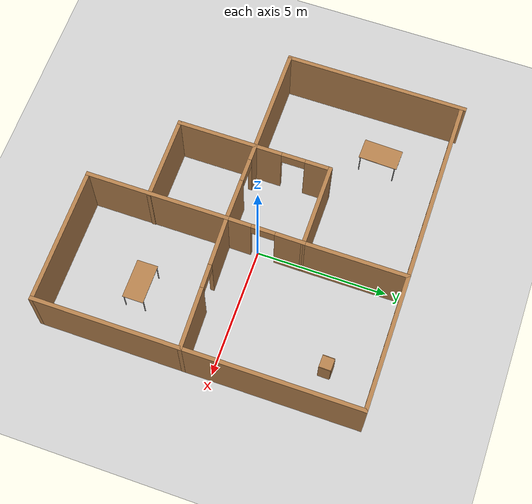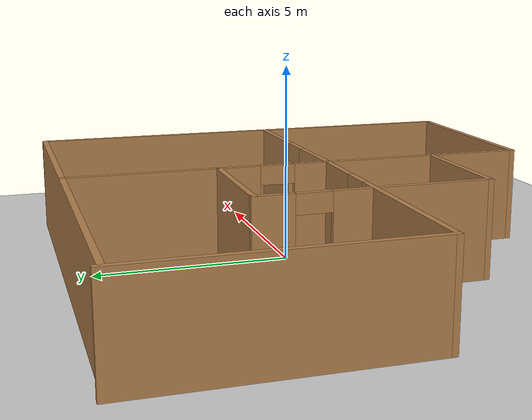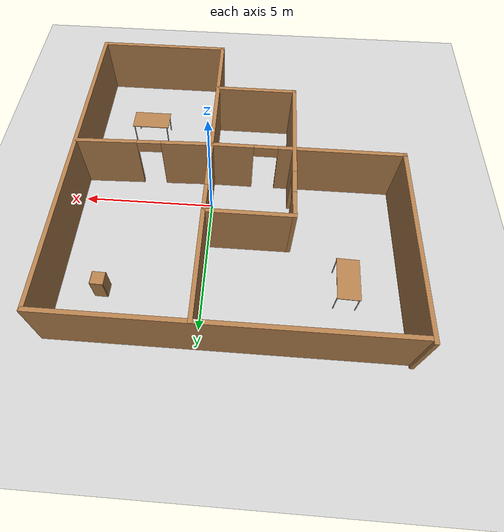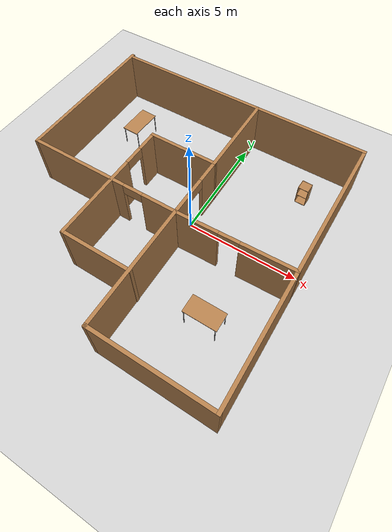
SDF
<sdf version="1.7">
 <world name="default">
  <light name="sun" type="directional">
   <pose>0 0 10 0 -0 0</pose>
   <diffuse>0.8 0.8 0.8 1</diffuse>
   <specular>0.2 0.2 0.2 1</specular>
   <attenuation>
    <range>1000</range>
    <constant>0.9</constant>
    <linear>0.01</linear>
    <quadratic>0.001</quadratic>
   </attenuation>
   <direction>-0.5 0.1 -0.9</direction>
   <spot><inner_angle>0</inner_angle><outer_angle>0</outer_angle><falloff>0</falloff></spot>
  </light>
  <model name="ground_plane">
   <static>1</static>
   <link name="link">
    <collision name="collision">
     <geometry><plane><normal>0 0 1</normal><size>100 100</size></plane></geometry>
     <surface>
      <contact><collide_bitmask>65535</collide_bitmask></contact>
      <friction><ode><mu>100</mu><mu2>50</mu2></ode></friction>
     </surface>
    </collision>
    <visual name="visual">
     <cast_shadows>0</cast_shadows>
     <geometry><plane><normal>0 0 1</normal><size>100 100</size></plane></geometry>
     <material>
      <script><uri>file://media/materials/scripts/gazebo.material</uri><name>Gazebo/Grey</name></script>
     </material>
    </visual>
   </link>
  </model>
  <gravity>0 0 -9.8</gravity>
  <magnetic_field>6e-06 2.3e-05 -4.2e-05</magnetic_field>
  <atmosphere type="adiabatic"/>
  <physics type="ode">
   <max_step_size>0.001</max_step_size>
   <real_time_factor>1</real_time_factor>
   <real_time_update_rate>1000</real_time_update_rate>
  </physics>
  <scene><ambient>0.4 0.4 0.4 1</ambient><background>0.7 0.7 0.7 1</background><shadows>1</shadows></scene>
  <spherical_coordinates>
   <surface_model>EARTH_WGS84</surface_model>
   <latitude_deg>0</latitude_deg>
   <longitude_deg>0</longitude_deg>
   <elevation>0</elevation>
   <heading_deg>0</heading_deg>
  </spherical_coordinates>
  <model name="aki_world5">
   <pose>-0.943228 -0.405773 0 0 -0 0</pose>
   <link name="Wall_10">
    <collision name="Wall_10_Collision">
     <geometry><box><size>7 0.15 2.5</size></box></geometry>
     <pose>0 0 1.25 0 -0 0</pose>
    </collision>
    <visual name="Wall_10_Visual">
     <pose>0 0 1.25 0 -0 0</pose>
     <geometry><box><size>7 0.15 2.5</size></box></geometry>
     <material>
      <script><uri>file://media/materials/scripts/gazebo.material</uri><name>Gazebo/Wood</name></script>
      <ambient>1 1 1 1</ambient>
     </material>
     <meta><layer>0</layer></meta>
    </visual>
    <pose>-6.10265 2.675 0 0 -0 1.5708</pose>
   </link>
   <link name="Wall_12">
    <pose>3.54889 -0.673424 0 0 -0 -3.11159</pose>
    <visual name="Wall_12_Visual_0">
     <pose>-1.43181 0 1.25 0 -0 0</pose>
     <geometry><box><size>2.39177 0.15 2.5</size></box></geometry>
     <material>
      <script><uri>file://media/materials/scripts/gazebo.material</uri><name>Gazebo/Wood</name></script>
      <ambient>1 1 1 1</ambient>
     </material>
     <meta><layer>0</layer></meta>
    </visual>
    <collision name="Wall_12_Collision_0">
     <geometry><box><size>2.39177 0.15 2.5</size></box></geometry>
     <pose>-1.43181 0 1.25 0 -0 0</pose>
    </collision>
    <visual name="Wall_12_Visual_1">
     <pose>1.64589 0 1.25 0 -0 0</pose>
     <geometry><box><size>1.96362 0.15 2.5</size></box></geometry>
     <material>
      <script><uri>file://media/materials/scripts/gazebo.material</uri><name>Gazebo/Wood</name></script>
      <ambient>1 1 1 1</ambient>
     </material>
     <meta><layer>0</layer></meta>
    </visual>
    <collision name="Wall_12_Collision_1">
     <geometry><box><size>1.96362 0.15 2.5</size></box></geometry>
     <pose>1.64589 0 1.25 0 -0 0</pose>
    </collision>
    <visual name="Wall_12_Visual_2">
     <pose>0.214077 0 2.25 0 -0 0</pose>
     <geometry><box><size>0.9 0.15 0.5</size></box></geometry>
     <material>
      <script><uri>file://media/materials/scripts/gazebo.material</uri><name>Gazebo/Wood</name></script>
      <ambient>1 1 1 1</ambient>
     </material>
     <meta><layer>0</layer></meta>
    </visual>
    <collision name="Wall_12_Collision_2">
     <geometry><box><size>0.9 0.15 0.5</size></box></geometry>
     <pose>0.214077 0 2.25 0 -0 0</pose>
    </collision>
   </link>
   <link name="Wall_14">
    <collision name="Wall_14_Collision">
     <geometry><box><size>3.25 0.15 2.5</size></box></geometry>
     <pose>0 0 1.25 0 -0 0</pose>
    </collision>
    <visual name="Wall_14_Visual">
     <pose>0 0 1.25 0 -0 0</pose>
     <geometry><box><size>3.25 0.15 2.5</size></box></geometry>
     <material>
      <script><uri>file://media/materials/scripts/gazebo.material</uri><name>Gazebo/Wood</name></script>
      <ambient>1 1 1 1</ambient>
     </material>
     <meta><layer>0</layer></meta>
    </visual>
    <pose>-0.530201 -3.70907 0 0 -0 3.14159</pose>
   </link>
   <link name="Wall_15">
    <pose>-2.0802 -0.784072 0 0 -0 1.5708</pose>
    <visual name="Wall_15_Visual_0">
     <pose>-0.966383 0 1.25 0 -0 0</pose>
     <geometry><box><size>4.06723 0.15 2.5</size></box></geometry>
     <material>
      <script><uri>file://media/materials/scripts/gazebo.material</uri><name>Gazebo/Wood</name></script>
      <ambient>1 1 1 1</ambient>
     </material>
     <meta><layer>0</layer></meta>
    </visual>
    <collision name="Wall_15_Collision_0">
     <geometry><box><size>4.06723 0.15 2.5</size></box></geometry>
     <pose>-0.966383 0 1.25 0 -0 0</pose>
    </collision>
    <visual name="Wall_15_Visual_1">
     <pose>2.48362 0 1.25 0 -0 0</pose>
     <geometry><box><size>1.03277 0.15 2.5</size></box></geometry>
     <material>
      <script><uri>file://media/materials/scripts/gazebo.material</uri><name>Gazebo/Wood</name></script>
      <ambient>1 1 1 1</ambient>
     </material>
     <meta><layer>0</layer></meta>
    </visual>
    <collision name="Wall_15_Collision_1">
     <geometry><box><size>1.03277 0.15 2.5</size></box></geometry>
     <pose>2.48362 0 1.25 0 -0 0</pose>
    </collision>
    <visual name="Wall_15_Visual_2">
     <pose>1.51723 0 2.25 0 -0 0</pose>
     <geometry><box><size>0.9 0.15 0.5</size></box></geometry>
     <material>
      <script><uri>file://media/materials/scripts/gazebo.material</uri><name>Gazebo/Wood</name></script>
      <ambient>1 1 1 1</ambient>
     </material>
     <meta><layer>0</layer></meta>
    </visual>
    <collision name="Wall_15_Collision_2">
     <geometry><box><size>0.9 0.15 0.5</size></box></geometry>
     <pose>1.51723 0 2.25 0 -0 0</pose>
    </collision>
   </link>
   <link name="Wall_16">
    <collision name="Wall_16_Collision">
     <geometry><box><size>3.25 0.15 2.5</size></box></geometry>
     <pose>0 0 1.25 0 -0 0</pose>
    </collision>
    <visual name="Wall_16_Visual">
     <pose>0 0 1.25 0 -0 0</pose>
     <geometry><box><size>3.25 0.15 2.5</size></box></geometry>
     <material>
      <script><uri>file://media/materials/scripts/gazebo.material</uri><name>Gazebo/Wood</name></script>
      <ambient>1 1 1 1</ambient>
     </material>
     <meta><layer>0</layer></meta>
    </visual>
    <pose>-0.530201 2.14093 0 0 -0 0</pose>
   </link>
   <link name="Wall_17">
    <pose>1.00857 0.695464 0 0 -0 -1.57856</pose>
    <visual name="Wall_17_Visual_0">
     <pose>-0.951153 0 1.25 0 -0 0</pose>
     <geometry><box><size>1.13871 0.15 2.5</size></box></geometry>
     <material>
      <script><uri>file://media/materials/scripts/gazebo.material</uri><name>Gazebo/Wood</name></script>
      <ambient>1 1 1 1</ambient>
     </material>
     <meta><layer>0</layer></meta>
    </visual>
    <collision name="Wall_17_Collision_0">
     <geometry><box><size>1.13871 0.15 2.5</size></box></geometry>
     <pose>-0.951153 0 1.25 0 -0 0</pose>
    </collision>
    <visual name="Wall_17_Visual_1">
     <pose>1.01935 0 1.25 0 -0 0</pose>
     <geometry><box><size>1.00231 0.15 2.5</size></box></geometry>
     <material>
      <script><uri>file://media/materials/scripts/gazebo.material</uri><name>Gazebo/Wood</name></script>
      <ambient>1 1 1 1</ambient>
     </material>
     <meta><layer>0</layer></meta>
    </visual>
    <collision name="Wall_17_Collision_1">
     <geometry><box><size>1.00231 0.15 2.5</size></box></geometry>
     <pose>1.01935 0 1.25 0 -0 0</pose>
    </collision>
    <visual name="Wall_17_Visual_2">
     <pose>0.068201 0 2.25 0 -0 0</pose>
     <geometry><box><size>0.9 0.15 0.5</size></box></geometry>
     <material>
      <script><uri>file://media/materials/scripts/gazebo.material</uri><name>Gazebo/Wood</name></script>
      <ambient>1 1 1 1</ambient>
     </material>
     <meta><layer>0</layer></meta>
    </visual>
    <collision name="Wall_17_Collision_2">
     <geometry><box><size>0.9 0.15 0.5</size></box></geometry>
     <pose>0.068201 0 2.25 0 -0 0</pose>
    </collision>
   </link>
   <link name="Wall_19">
    <collision name="Wall_19_Collision">
     <geometry><box><size>4 0.15 2.5</size></box></geometry>
     <pose>0 0 1.25 0 -0 0</pose>
    </collision>
    <visual name="Wall_19_Visual">
     <pose>0 0 1.25 0 -0 0</pose>
     <geometry><box><size>4 0.15 2.5</size></box></geometry>
     <material>
      <script><uri>file://media/materials/scripts/gazebo.material</uri><name>Gazebo/Wood</name></script>
      <ambient>1 1 1 1</ambient>
     </material>
     <meta><layer>0</layer></meta>
    </visual>
    <pose>1.0198 4.06593 0 0 -0 1.5708</pose>
   </link>
   <link name="Wall_5">
    <collision name="Wall_5_Collision">
     <geometry><box><size>12.25 0.15 2.5</size></box></geometry>
     <pose>0 0 1.25 0 -0 0</pose>
    </collision>
    <visual name="Wall_5_Visual">
     <pose>0 0 1.25 0 -0 0</pose>
     <geometry><box><size>12.25 0.15 2.5</size></box></geometry>
     <material>
      <script><uri>file://media/materials/scripts/gazebo.material</uri><name>Gazebo/Wood</name></script>
      <ambient>1 1 1 1</ambient>
     </material>
     <meta><layer>0</layer></meta>
    </visual>
    <pose>0.047346 6 0 0 -0 0</pose>
   </link>
   <link name="Wall_6">
    <collision name="Wall_6_Collision">
     <geometry><box><size>12.25 0.15 2.5</size></box></geometry>
     <pose>0 0 1.25 0 -0 0</pose>
    </collision>
    <visual name="Wall_6_Visual">
     <pose>0 0 1.25 0 -0 0</pose>
     <geometry><box><size>12.25 0.15 2.5</size></box></geometry>
     <material>
      <script><uri>file://media/materials/scripts/gazebo.material</uri><name>Gazebo/Wood</name></script>
      <ambient>1 1 1 1</ambient>
     </material>
     <meta><layer>0</layer></meta>
    </visual>
    <pose>6.09735 -0.05 0 0 -0 -1.5708</pose>
   </link>
   <link name="Wall_7">
    <collision name="Wall_7_Collision">
     <geometry><box><size>5.25 0.15 2.5</size></box></geometry>
     <pose>0 0 1.25 0 -0 0</pose>
    </collision>
    <visual name="Wall_7_Visual">
     <pose>0 0 1.25 0 -0 0</pose>
     <geometry><box><size>5.25 0.15 2.5</size></box></geometry>
     <material>
      <script><uri>file://media/materials/scripts/gazebo.material</uri><name>Gazebo/Wood</name></script>
      <ambient>1 1 1 1</ambient>
     </material>
     <meta><layer>0</layer></meta>
    </visual>
    <pose>3.54735 -6.1 0 0 -0 3.14159</pose>
   </link>
   <link name="Wall_8">
    <collision name="Wall_8_Collision">
     <geometry><box><size>5.5 0.15 2.5</size></box></geometry>
     <pose>0 0 1.25 0 -0 0</pose>
    </collision>
    <visual name="Wall_8_Visual">
     <pose>0 0 1.25 0 -0 0</pose>
     <geometry><box><size>5.5 0.15 2.5</size></box></geometry>
     <material>
      <script><uri>file://media/materials/scripts/gazebo.material</uri><name>Gazebo/Wood</name></script>
      <ambient>1 1 1 1</ambient>
     </material>
     <meta><layer>0</layer></meta>
    </visual>
    <pose>0.997346 -3.425 0 0 -0 1.5708</pose>
   </link>
   <link name="Wall_9">
    <pose>-2.55265 -0.75 0 0 -0 3.14159</pose>
    <visual name="Wall_9_Visual_0">
     <pose>-2.79962 0 1.25 0 -0 0</pose>
     <geometry><box><size>1.65076 0.15 2.5</size></box></geometry>
     <material>
      <script><uri>file://media/materials/scripts/gazebo.material</uri><name>Gazebo/Wood</name></script>
      <ambient>1 1 1 1</ambient>
     </material>
     <meta><layer>0</layer></meta>
    </visual>
    <collision name="Wall_9_Collision_0">
     <geometry><box><size>1.65076 0.15 2.5</size></box></geometry>
     <pose>-2.79962 0 1.25 0 -0 0</pose>
    </collision>
    <visual name="Wall_9_Visual_1">
     <pose>1.27538 0 1.25 0 -0 0</pose>
     <geometry><box><size>4.69924 0.15 2.5</size></box></geometry>
     <material>
      <script><uri>file://media/materials/scripts/gazebo.material</uri><name>Gazebo/Wood</name></script>
      <ambient>1 1 1 1</ambient>
     </material>
     <meta><layer>0</layer></meta>
    </visual>
    <collision name="Wall_9_Collision_1">
     <geometry><box><size>4.69924 0.15 2.5</size></box></geometry>
     <pose>1.27538 0 1.25 0 -0 0</pose>
    </collision>
    <visual name="Wall_9_Visual_2">
     <pose>-1.52424 0 2.25 0 -0 0</pose>
     <geometry><box><size>0.9 0.15 0.5</size></box></geometry>
     <material>
      <script><uri>file://media/materials/scripts/gazebo.material</uri><name>Gazebo/Wood</name></script>
      <ambient>1 1 1 1</ambient>
     </material>
     <meta><layer>0</layer></meta>
    </visual>
    <collision name="Wall_9_Collision_2">
     <geometry><box><size>0.9 0.15 0.5</size></box></geometry>
     <pose>-1.52424 0 2.25 0 -0 0</pose>
    </collision>
   </link>
   <static>1</static>
  </model>
  <model name="cabinet">
   <static>1</static>
   <link name="cabinet_bottom_plate">
    <inertial>
     <pose>0 0 -1 0 -0 0</pose>
     <inertia><ixx>2.05</ixx><ixy>0</ixy><ixz>0</ixz><iyy>2.05</iyy><iyz>0</iyz><izz>2.05</izz></inertia>
     <mass>25</mass>
    </inertial>
    <collision name="cabinet_bottom_plate_geom">
     <pose>0 0 0.01 0 -0 0</pose>
     <geometry><box><size>0.45 0.45 0.02</size></box></geometry>
    </collision>
    <visual name="cabinet_bottom_plate_geom_visual">
     <pose>0 0 0.01 0 -0 0</pose>
     <geometry><box><size>0.45 0.45 0.02</size></box></geometry>
     <material>
      <script><uri>file://media/materials/scripts/gazebo.material</uri><name>Gazebo/Wood</name></script>
     </material>
    </visual>
    <collision name="cabinet_bottom_plate_geom_cabinet_back_plate">
     <pose>0.235 0 0.51 0 -0 0</pose>
     <geometry><box><size>0.02 0.45 1.02</size></box></geometry>
    </collision>
    <visual name="cabinet_bottom_plate_geom_cabinet_back_plate_visual">
     <pose>0.235 0 0.51 0 -0 0</pose>
     <geometry><box><size>0.02 0.45 1.02</size></box></geometry>
     <material>
      <script><uri>file://media/materials/scripts/gazebo.material</uri><name>Gazebo/Wood</name></script>
     </material>
    </visual>
    <collision name="cabinet_bottom_plate_geom_cabinet_left_plate">
     <pose>0 0.235 0.51 0 -0 0</pose>
     <geometry><box><size>0.45 0.02 1.02</size></box></geometry>
    </collision>
    <visual name="cabinet_bottom_plate_geom_cabinet_left_plate_visual">
     <pose>0 0.235 0.51 0 -0 0</pose>
     <geometry><box><size>0.45 0.02 1.02</size></box></geometry>
     <material>
      <script><uri>file://media/materials/scripts/gazebo.material</uri><name>Gazebo/Wood</name></script>
     </material>
    </visual>
    <collision name="cabinet_bottom_plate_geom_cabinet_middle_plate">
     <pose>0 0 0.51 0 -0 0</pose>
     <geometry><box><size>0.45 0.45 0.02</size></box></geometry>
    </collision>
    <visual name="cabinet_bottom_plate_geom_cabinet_middle_plate_visual">
     <pose>0 0 0.51 0 -0 0</pose>
     <geometry><box><size>0.45 0.45 0.02</size></box></geometry>
     <material>
      <script><uri>file://media/materials/scripts/gazebo.material</uri><name>Gazebo/Wood</name></script>
     </material>
    </visual>
    <collision name="cabinet_bottom_plate_geom_cabinet_right_plate">
     <pose>0 -0.235 0.51 0 -0 0</pose>
     <geometry><box><size>0.45 0.02 1.02</size></box></geometry>
    </collision>
    <visual name="cabinet_bottom_plate_geom_cabinet_right_plate_visual">
     <pose>0 -0.235 0.51 0 -0 0</pose>
     <geometry><box><size>0.45 0.02 1.02</size></box></geometry>
     <material>
      <script><uri>file://media/materials/scripts/gazebo.material</uri><name>Gazebo/Wood</name></script>
     </material>
    </visual>
    <collision name="cabinet_bottom_plate_geom_cabinet_top_plate">
     <pose>0 0 1.01 0 -0 0</pose>
     <geometry><box><size>0.45 0.45 0.02</size></box></geometry>
    </collision>
    <visual name="cabinet_bottom_plate_geom_cabinet_top_plate_visual">
     <pose>0 0 1.01 0 -0 0</pose>
     <geometry><box><size>0.45 0.45 0.02</size></box></geometry>
     <material>
      <script><uri>file://media/materials/scripts/gazebo.material</uri><name>Gazebo/Wood</name></script>
     </material>
    </visual>
   </link>
   <pose>3.54152 3.7982 0 0 -0 1.54732</pose>
  </model>
  <model name="table">
   <static>1</static>
   <link name="link">
    <collision name="surface">
     <pose>0 0 1 0 -0 0</pose>
     <geometry><box><size>1.5 0.8 0.03</size></box></geometry>
     <surface><friction><ode><mu>0.6</mu><mu2>0.6</mu2></ode></friction></surface>
    </collision>
    <visual name="visual1">
     <pose>0 0 1 0 -0 0</pose>
     <geometry><box><size>1.5 0.8 0.03</size></box></geometry>
     <material>
      <script><uri>file://media/materials/scripts/gazebo.material</uri><name>Gazebo/Wood</name></script>
     </material>
    </visual>
    <collision name="front_left_leg">
     <pose>0.68 0.38 0.5 0 -0 0</pose>
     <geometry><cylinder><radius>0.02</radius><length>1</length></cylinder></geometry>
    </collision>
    <visual name="front_left_leg">
     <pose>0.68 0.38 0.5 0 -0 0</pose>
     <geometry><cylinder><radius>0.02</radius><length>1</length></cylinder></geometry>
     <material>
      <script><uri>file://media/materials/scripts/gazebo.material</uri><name>Gazebo/Grey</name></script>
     </material>
    </visual>
    <collision name="front_right_leg">
     <pose>0.68 -0.38 0.5 0 -0 0</pose>
     <geometry><cylinder><radius>0.02</radius><length>1</length></cylinder></geometry>
    </collision>
    <visual name="front_right_leg">
     <pose>0.68 -0.38 0.5 0 -0 0</pose>
     <geometry><cylinder><radius>0.02</radius><length>1</length></cylinder></geometry>
     <material>
      <script><uri>file://media/materials/scripts/gazebo.material</uri><name>Gazebo/Grey</name></script>
     </material>
    </visual>
    <collision name="back_right_leg">
     <pose>-0.68 -0.38 0.5 0 -0 0</pose>
     <geometry><cylinder><radius>0.02</radius><length>1</length></cylinder></geometry>
    </collision>
    <visual name="back_right_leg">
     <pose>-0.68 -0.38 0.5 0 -0 0</pose>
     <geometry><cylinder><radius>0.02</radius><length>1</length></cylinder></geometry>
     <material>
      <script><uri>file://media/materials/scripts/gazebo.material</uri><name>Gazebo/Grey</name></script>
     </material>
    </visual>
    <collision name="back_left_leg">
     <pose>-0.68 0.38 0.5 0 -0 0</pose>
     <geometry><cylinder><radius>0.02</radius><length>1</length></cylinder></geometry>
    </collision>
    <visual name="back_left_leg">
     <pose>-0.68 0.38 0.5 0 -0 0</pose>
     <geometry><cylinder><radius>0.02</radius><length>1</length></cylinder></geometry>
     <material>
      <script><uri>file://media/materials/scripts/gazebo.material</uri><name>Gazebo/Grey</name></script>
     </material>
    </visual>
   </link>
   <pose>2.83624 -3.51792 0 0 -0 0</pose>
  </model>
  <model name="table_0">
   <static>1</static>
   <link name="link">
    <collision name="surface">
     <pose>0 0 1 0 -0 0</pose>
     <geometry><box><size>1.5 0.8 0.03</size></box></geometry>
     <surface><friction><ode><mu>0.6</mu><mu2>0.6</mu2></ode></friction></surface>
    </collision>
    <visual name="visual1">
     <pose>0 0 1 0 -0 0</pose>
     <geometry><box><size>1.5 0.8 0.03</size></box></geometry>
     <material>
      <script><uri>file://media/materials/scripts/gazebo.material</uri><name>Gazebo/Wood</name></script>
     </material>
    </visual>
    <collision name="front_left_leg">
     <pose>0.68 0.38 0.5 0 -0 0</pose>
     <geometry><cylinder><radius>0.02</radius><length>1</length></cylinder></geometry>
    </collision>
    <visual name="front_left_leg">
     <pose>0.68 0.38 0.5 0 -0 0</pose>
     <geometry><cylinder><radius>0.02</radius><length>1</length></cylinder></geometry>
     <material>
      <script><uri>file://media/materials/scripts/gazebo.material</uri><name>Gazebo/Grey</name></script>
     </material>
    </visual>
    <collision name="front_right_leg">
     <pose>0.68 -0.38 0.5 0 -0 0</pose>
     <geometry><cylinder><radius>0.02</radius><length>1</length></cylinder></geometry>
    </collision>
    <visual name="front_right_leg">
     <pose>0.68 -0.38 0.5 0 -0 0</pose>
     <geometry><cylinder><radius>0.02</radius><length>1</length></cylinder></geometry>
     <material>
      <script><uri>file://media/materials/scripts/gazebo.material</uri><name>Gazebo/Grey</name></script>
     </material>
    </visual>
    <collision name="back_right_leg">
     <pose>-0.68 -0.38 0.5 0 -0 0</pose>
     <geometry><cylinder><radius>0.02</radius><length>1</length></cylinder></geometry>
    </collision>
    <visual name="back_right_leg">
     <pose>-0.68 -0.38 0.5 0 -0 0</pose>
     <geometry><cylinder><radius>0.02</radius><length>1</length></cylinder></geometry>
     <material>
      <script><uri>file://media/materials/scripts/gazebo.material</uri><name>Gazebo/Grey</name></script>
     </material>
    </visual>
    <collision name="back_left_leg">
     <pose>-0.68 0.38 0.5 0 -0 0</pose>
     <geometry><cylinder><radius>0.02</radius><length>1</length></cylinder></geometry>
    </collision>
    <visual name="back_left_leg">
     <pose>-0.68 0.38 0.5 0 -0 0</pose>
     <geometry><cylinder><radius>0.02</radius><length>1</length></cylinder></geometry>
     <material>
      <script><uri>file://media/materials/scripts/gazebo.material</uri><name>Gazebo/Grey</name></script>
     </material>
    </visual>
   </link>
   <pose>-4.99607 3.21502 0 0 -0 1.53799</pose>
  </model>
 </world>
</sdf>
